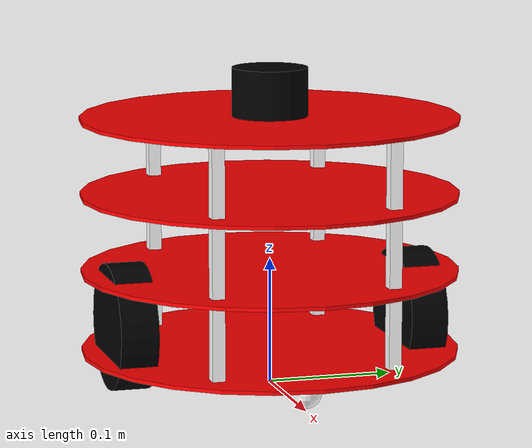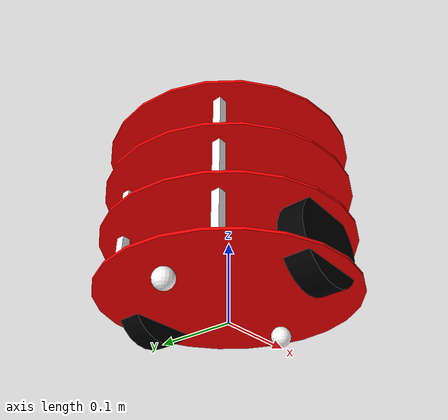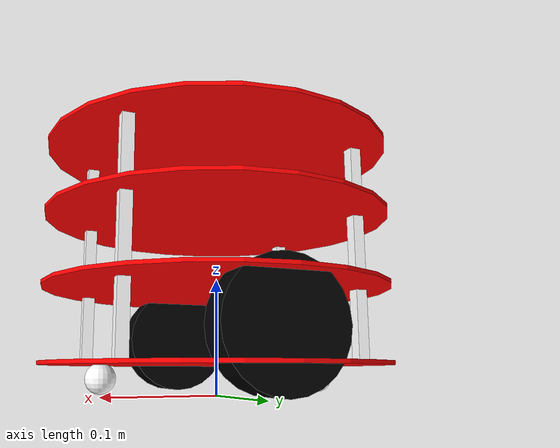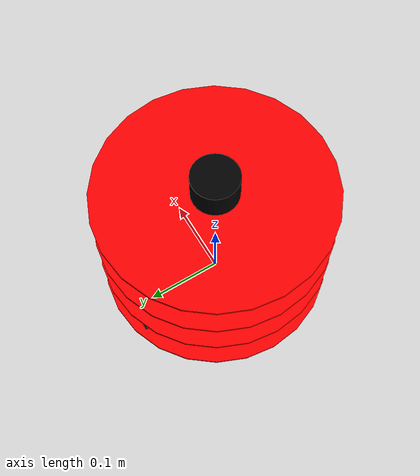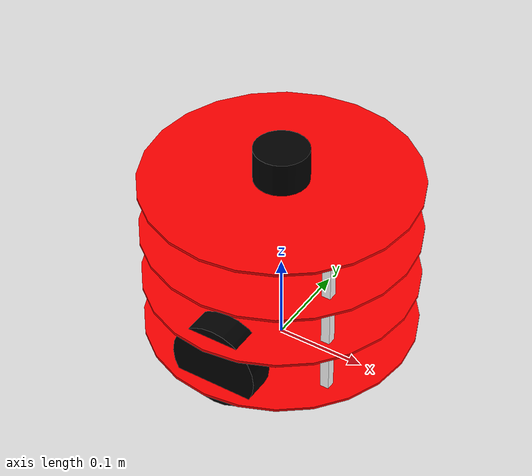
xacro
<?xml version="1.0" encoding="utf-8"?>
<robot  name="ddrobot" xmlns:xacro="http://ros.org/wiki/xacro">
<xacro:include filename="$(find ddrobot_description)/urdf/common_properties.xacro"/>

<!--Base_footprint-->
<link name="base_footprint"> </link>
<joint
    name="base_footprint_to_base"
    type="fixed">
    <origin xyz="0 0 0.0275" rpy="0 0 0" />
    <parent link= "base_footprint"/>
    <child link="base_link"/>
</joint>

<!--Base_link-->
<link name="base_link">

    <xacro:cylinder_inertia m="0.254469" r="0.15" h="0.005"/>

    <visual>
        <origin xyz="0.0 0.0 0.0" rpy="0.0 0.0 0.0"/>
        <geometry>
            <cylinder length="0.003" radius="0.15"/>
        </geometry>
        <material name="blue">
            <color rgba="1.0 0.0 0.0 1.0"/>
            <texture filename=""/>
        </material>
    </visual>
    <collision>
        <origin xyz="0.0 0.0 0.0" rpy="0.0 0.0 0.0"/>
        <geometry>
            <cylinder length="0.003" radius="0.15"/>
        </geometry>
    </collision>
</link>

<!-- Right Wheel -->
  <link name="right_wheel">
    <visual>
      <origin xyz="0 0 0" rpy="1.570795 0 0" />
      <geometry>
          <cylinder length="0.03" radius="0.05" />
      </geometry>
      <material name="black" />
    </visual>
    <!-- Right Wheel collision, mass and inertia -->
    <collision>
      <origin xyz="0 0 0" rpy="1.570795 0 0" />
      <geometry>
          <cylinder length="0.03" radius="0.05" />
      </geometry>
    </collision>

    <xacro:cylinder_inertia m="0.18" r="0.05" h="0.03"/>
  </link>

<joint name="base_to_right_wheel" type="continuous">
    <origin xyz="0 -0.1175 0.025" rpy="0 0 0" />
    <parent link="base_link" />
    <child link="right_wheel" />
    <axis xyz="0 1 0" />
</joint>

<!-- Left Wheel -->
  <link name="left_wheel">
    <visual>
      <origin xyz="0 0 0" rpy="1.570795 0 0" />
      <geometry>
          <cylinder length="0.03" radius="0.05" />
      </geometry>
      <material name="black" />
    </visual>

    <!-- Left Wheel collision, mass and inertia -->
    <collision>
      <origin xyz="0 0 0" rpy="1.570795 0 0" />
      <geometry>
          <cylinder length="0.03" radius="0.05" />
      </geometry>
    </collision>

    <xacro:cylinder_inertia m="0.18" r="0.05" h="0.03"/>

  </link>

<joint
    name="base_to_left_wheel"
    type="continuous">
    <origin xyz="0 0.1175 0.025" rpy="0 0 0" />
    <parent link="base_link" />
    <child link="left_wheel" />
    <axis xyz="0 1 0" />
</joint>

<!--Caster_front_link-->
  <link name="caster_front_wheel">
    <visual>
      <origin xyz="0 0 0" rpy="0 0 0" />
      <geometry>
          <sphere radius="0.0125" />
      </geometry>
      <material name="white" />
    </visual>

    <!--collision, mass and inertia -->
    <collision>
      <origin xyz="0 0 0" rpy="0 0 0" />
      <geometry>
          <sphere radius="0.0125" />
      </geometry>
    </collision>

    <xacro:sphere_inertia m="0.05" r="0.0125"/>

  </link>

  <joint
    name="base_to_caster_front"
    type="fixed">
    <origin xyz="0.1 0.0 -0.0125" rpy="0.0 0.0 0.0" />
    <parent link="base_link" />
    <child link="caster_front_wheel" />
  </joint>

<!--Caster_back_link-->
  <link name="caster_back_wheel">
    <visual>
      <origin xyz="0 0 0" rpy="0 0 0" />
      <geometry>
          <sphere radius="0.0125" />
      </geometry>
      <material name="white" />
    </visual>

    <!--collision, mass and inertia -->
    <collision>
      <origin xyz="0 0 0" rpy="0 0 0" />
      <geometry>
        <sphere radius="0.0125" />
      </geometry>
    </collision>

    <xacro:sphere_inertia m="0.05" r="0.0125"/>

  </link>

  <joint
    name="base_to_caster_back"
    type="fixed">
    <origin xyz="-0.1 0.0 -0.0125" rpy="0.0 0.0 0.0" />
    <parent link="base_link" />
    <child link="caster_back_wheel" />
  </joint>

<!--pillar_11-->
  <link name="pillar_11">
    <visual>
      <origin xyz="0 0 0" rpy="0 0 0" />
      <geometry>
          <box size="0.01 0.01 0.06" />
      </geometry>
      <material name="white" />
    </visual>

    <!--collision, mass and inertia -->
    <collision>
      <origin xyz="0 0 0" rpy="0 0 0" />
      <geometry>
          <box size="0.01 0.01 0.06" />
      </geometry>
    </collision>

    <xacro:box_inertia m="0.08" w="0.01" h="0.06" d="0.01"/>

  </link>

  <joint
    name="base_to_pillar_11"
    type="fixed">
    <origin xyz="0.1 0.07 0.03" rpy="0.0 0.0 0.0" />
    <parent link="base_link" />
    <child link="pillar_11" />
  </joint>

  <!--pillar_12-->
  <link name="pillar_12">
    <visual>
      <origin xyz="0 0 0" rpy="0 0 0" />
      <geometry>
          <box size="0.01 0.01 0.06" />
      </geometry>
      <material name="white" />
    </visual>

    <!--collision, mass and inertia -->
    <collision>
      <origin xyz="0 0 0" rpy="0 0 0" />
      <geometry>
          <box size="0.01 0.01 0.06" />
      </geometry>
    </collision>

    <xacro:box_inertia m="0.08" w="0.01" h="0.06" d="0.01"/>

  </link>

  <joint
    name="base_to_pillar_12"
    type="fixed">
    <origin xyz="0.1 -0.07 0.03" rpy="0.0 0.0 0.0" />
    <parent link="base_link" />
    <child link="pillar_12" />
  </joint>

  <!--pillar_13-->
  <link name="pillar_13">
    <visual>
      <origin xyz="0 0 0" rpy="0 0 0" />
      <geometry>
          <box size="0.01 0.01 0.06" />
      </geometry>
      <material name="white" />
    </visual>

    <!--collision, mass and inertia -->
    <collision>
      <origin xyz="0 0 0" rpy="0 0 0" />
      <geometry>
          <box size="0.01 0.01 0.06" />
      </geometry>
    </collision>

    <xacro:box_inertia m="0.08" w="0.01" h="0.06" d="0.01"/>

  </link>

  <joint
    name="base_to_pillar_13"
    type="fixed">
    <origin xyz="-0.1 -0.07 0.03" rpy="0.0 0.0 0.0" />
    <parent link="base_link" />
    <child link="pillar_13" />
  </joint>

  <!--pillar_14-->
  <link name="pillar_14">
    <visual>
      <origin xyz="0 0 0" rpy="0 0 0" />
      <geometry>
          <box size="0.01 0.01 0.06" />
      </geometry>
      <material name="white" />
    </visual>

    <!--collision, mass and inertia -->
    <collision>
      <origin xyz="0 0 0" rpy="0 0 0" />
      <geometry>
          <box size="0.01 0.01 0.06" />
      </geometry>
    </collision>

    <xacro:box_inertia m="0.08" w="0.01" h="0.06" d="0.01"/>

  </link>

  <joint
    name="base_to_pillar_14"
    type="fixed">
    <origin xyz="-0.1 0.07 0.03" rpy="0.0 0.0 0.0" />
    <parent link="base_link" />
    <child link="pillar_14" />
  </joint>

  <!--floor_link_2-->
<link name="floor_link_2">

    <xacro:cylinder_inertia m="0.254469" r="0.15" h="0.003"/>

    <visual>
        <origin xyz="0.0 0.0 0.0" rpy="0.0 0.0 0.0"/>
        <geometry>
            <cylinder length="0.003" radius="0.15"/>
        </geometry>
        <material name="blue">
            <color rgba="1.0 0.0 0.0 1.0"/>
            <texture filename=""/>
        </material>
    </visual>
    <collision>
        <origin xyz="0.0 0.0 0.0" rpy="0.0 0.0 0.0"/>
        <geometry>
            <cylinder length="0.003" radius="0.15"/>
        </geometry>
    </collision>
</link>

<joint
    name="base_to_floor2"
    type="fixed">
    <origin xyz="0 0 0.0635" rpy="0 0 0" />
    <parent link= "base_link"/>
    <child link="floor_link_2"/>
</joint>

<!--pillar_11-->
  <link name="pillar_21">
    <visual>
      <origin xyz="0 0 0" rpy="0 0 0" />
      <geometry>
          <box size="0.01 0.01 0.06" />
      </geometry>
      <material name="white" />
    </visual>

    <!--collision, mass and inertia -->
    <collision>
      <origin xyz="0 0 0" rpy="0 0 0" />
      <geometry>
          <box size="0.01 0.01 0.06" />
      </geometry>
    </collision>

    <xacro:box_inertia m="0.08" w="0.01" h="0.06" d="0.01"/>

  </link>

  <joint
    name="floor2_to_pillar_21"
    type="fixed">
    <origin xyz="0.1 0.07 0.03" rpy="0.0 0.0 0.0" />
    <parent link="floor_link_2" />
    <child link="pillar_21" />
  </joint>

  <!--pillar_12-->
  <link name="pillar_22">
    <visual>
      <origin xyz="0 0 0" rpy="0 0 0" />
      <geometry>
          <box size="0.01 0.01 0.06" />
      </geometry>
      <material name="white" />
    </visual>

    <!--collision, mass and inertia -->
    <collision>
      <origin xyz="0 0 0" rpy="0 0 0" />
      <geometry>
          <box size="0.01 0.01 0.06" />
      </geometry>
    </collision>

    <xacro:box_inertia m="0.08" w="0.01" h="0.06" d="0.01"/>

  </link>

  <joint
    name="floor2_to_pillar_22"
    type="fixed">
    <origin xyz="0.1 -0.07 0.03" rpy="0.0 0.0 0.0" />
    <parent link="floor_link_2" />
    <child link="pillar_22" />
  </joint>

  <!--pillar_13-->
  <link name="pillar_23">
    <visual>
      <origin xyz="0 0 0" rpy="0 0 0" />
      <geometry>
          <box size="0.01 0.01 0.06" />
      </geometry>
      <material name="white" />
    </visual>

    <!--collision, mass and inertia -->
    <collision>
      <origin xyz="0 0 0" rpy="0 0 0" />
      <geometry>
          <box size="0.01 0.01 0.06" />
      </geometry>
    </collision>

    <xacro:box_inertia m="0.08" w="0.01" h="0.06" d="0.01"/>

  </link>

  <joint
    name="base_to_pillar_23"
    type="fixed">
    <origin xyz="-0.1 -0.07 0.03" rpy="0.0 0.0 0.0" />
    <parent link="floor_link_2" />
    <child link="pillar_23" />
  </joint>

  <!--pillar_14-->
  <link name="pillar_24">
    <visual>
      <origin xyz="0 0 0" rpy="0 0 0" />
      <geometry>
          <box size="0.01 0.01 0.06" />
      </geometry>
      <material name="white" />
    </visual>

    <!--collision, mass and inertia -->
    <collision>
      <origin xyz="0 0 0" rpy="0 0 0" />
      <geometry>
          <box size="0.01 0.01 0.06" />
      </geometry>
    </collision>

    <xacro:box_inertia m="0.08" w="0.01" h="0.06" d="0.01"/>

  </link>

  <joint
    name="base_to_pillar_24"
    type="fixed">
    <origin xyz="-0.1 0.07 0.03" rpy="0.0 0.0 0.0" />
    <parent link="floor_link_2" />
    <child link="pillar_24" />
  </joint>

  <!--IMU_link-->
  <link name="imu_link"/>

  <joint name="imu_joint" type="fixed">
    <child link="imu_link"/>
    <parent link="base_link"/>
    <origin xyz="0 0 0.07" rpy="0 0 0"/>
  </joint>

    <!--floor_link_3-->
<link name="floor_link_3">

    <xacro:cylinder_inertia m="0.254469" r="0.15" h="0.003"/>

    <visual>
        <origin xyz="0.0 0.0 0.0" rpy="0.0 0.0 0.0"/>
        <geometry>
            <cylinder length="0.003" radius="0.15"/>
        </geometry>
        <material name="blue">
            <color rgba="1.0 0.0 0.0 1.0"/>
            <texture filename=""/>
        </material>
    </visual>
    <collision>
        <origin xyz="0.0 0.0 0.0" rpy="0.0 0.0 0.0"/>
        <geometry>
            <cylinder length="0.003" radius="0.15"/>
        </geometry>
    </collision>
</link>

<joint
    name="base_to_floor3"
    type="fixed">
    <origin xyz="0 0 0.125" rpy="0 0 0" />
    <parent link= "base_link"/>
    <child link="floor_link_3"/>
</joint>

<!--pillar_11-->
  <link name="pillar_31">
    <visual>
      <origin xyz="0 0 0" rpy="0 0 0" />
      <geometry>
          <box size="0.01 0.01 0.06" />
      </geometry>
      <material name="white" />
    </visual>

    <!--collision, mass and inertia -->
    <collision>
      <origin xyz="0 0 0" rpy="0 0 0" />
      <geometry>
          <box size="0.01 0.01 0.06" />
      </geometry>
    </collision>

    <xacro:box_inertia m="0.08" w="0.01" h="0.06" d="0.01"/>

  </link>

  <joint
    name="floor3_to_pillar_31"
    type="fixed">
    <origin xyz="0.1 0.07 0.03" rpy="0.0 0.0 0.0" />
    <parent link="floor_link_3" />
    <child link="pillar_31" />
  </joint>

  <!--pillar_12-->
  <link name="pillar_32">
    <visual>
      <origin xyz="0 0 0" rpy="0 0 0" />
      <geometry>
          <box size="0.01 0.01 0.06" />
      </geometry>
      <material name="white" />
    </visual>

    <!--collision, mass and inertia -->
    <collision>
      <origin xyz="0 0 0" rpy="0 0 0" />
      <geometry>
          <box size="0.01 0.01 0.06" />
      </geometry>
    </collision>

    <xacro:box_inertia m="0.08" w="0.01" h="0.06" d="0.01"/>

  </link>

  <joint
    name="floor3_to_pillar_32"
    type="fixed">
    <origin xyz="0.1 -0.07 0.03" rpy="0.0 0.0 0.0" />
    <parent link="floor_link_3" />
    <child link="pillar_32" />
  </joint>

  <!--pillar_13-->
  <link name="pillar_33">
    <visual>
      <origin xyz="0 0 0" rpy="0 0 0" />
      <geometry>
          <box size="0.01 0.01 0.06" />
      </geometry>
      <material name="white" />
    </visual>

    <!--collision, mass and inertia -->
    <collision>
      <origin xyz="0 0 0" rpy="0 0 0" />
      <geometry>
          <box size="0.01 0.01 0.06" />
      </geometry>
    </collision>

    <xacro:box_inertia m="0.08" w="0.01" h="0.06" d="0.01"/>

  </link>

  <joint
    name="base_to_pillar_33"
    type="fixed">
    <origin xyz="-0.1 -0.07 0.03" rpy="0.0 0.0 0.0" />
    <parent link="floor_link_3" />
    <child link="pillar_33" />
  </joint>

  <!--pillar_14-->
  <link name="pillar_34">
    <visual>
      <origin xyz="0 0 0" rpy="0 0 0" />
      <geometry>
          <box size="0.01 0.01 0.06" />
      </geometry>
      <material name="white" />
    </visual>

    <!--collision, mass and inertia -->
    <collision>
      <origin xyz="0 0 0" rpy="0 0 0" />
      <geometry>
          <box size="0.01 0.01 0.06" />
      </geometry>
    </collision>

    <xacro:box_inertia m="0.08" w="0.01" h="0.06" d="0.01"/>

  </link>

  <joint
    name="base_to_pillar_34"
    type="fixed">
    <origin xyz="-0.1 0.07 0.03" rpy="0.0 0.0 0.0" />
    <parent link="floor_link_3" />
    <child link="pillar_34" />
  </joint>

    <!--floor_link_4-->
<link name="floor_link_4">

    <xacro:cylinder_inertia m="0.254469" r="0.15" h="0.003"/>

    <visual>
        <origin xyz="0.0 0.0 0.0" rpy="0.0 0.0 0.0"/>
        <geometry>
            <cylinder length="0.003" radius="0.15"/>
        </geometry>
        <material name="blue">
            <color rgba="1.0 0.0 0.0 1.0"/>
            <texture filename=""/>
        </material>
    </visual>
    <collision>
        <origin xyz="0.0 0.0 0.0" rpy="0.0 0.0 0.0"/>
        <geometry>
            <cylinder length="0.003" radius="0.15"/>
        </geometry>
    </collision>
</link>

<joint
    name="base_to_floor4"
    type="fixed">
    <origin xyz="0 0 0.185" rpy="0 0 0" />
    <parent link= "base_link"/>
    <child link="floor_link_4"/>
</joint>

<!--RPLIDAR-->
<link name="laser">
  <xacro:cylinder_inertia m="0.19" r="0.03" h="0.04"/>

  <visual>
    <origin xyz=" 0 0 0 " rpy="0 0 0" />
    <geometry>
      <cylinder length="0.04" radius="0.03"/>
    </geometry>
    <material name="black"/>
  </visual>

  <collision>
    <origin xyz="0.0 0.0 0.0" rpy="0 0 0" />
    <geometry>
      <cylinder length="0.04" radius="0.03"/>
    </geometry>
  </collision>
</link>

<joint
    name="base_to_laser"
    type="fixed">
    <origin xyz="0 0 0.205" rpy="0 0 0" />
    <parent link= "base_link"/>
    <child link="laser"/>
</joint>

</robot>

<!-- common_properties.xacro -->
<robot name="xacro_properties" xmlns:xacro="http://ros.org/wiki/xacro">

  <!-- Init colour -->
  <material name="black"> <color rgba="0.0 0.0 0.0 1.0"/> </material>
  <material name="dark"> <color rgba="0.3 0.3 0.3 1.0"/> </material>
  <material name="light_black"> <color rgba="0.4 0.4 0.4 1.0"/> </material>
  <material name="blue"> <color rgba="0.0 0.0 0.8 1.0"/> </material>
  <material name="green"> <color rgba="0.0 0.8 0.0 1.0"/> </material>
  <material name="grey"> <color rgba="0.5 0.5 0.5 1.0"/> </material>
  <material name="orange"> <color rgba="${255/255} ${108/255} ${10/255} 1.0"/> </material>
  <material name="light_orange"> <color rgba="${255/255} ${108/255} ${10/255} 0.8"/> </material>
  <material name="brown"> <color rgba="${222/255} ${207/255} ${195/255} 1.0"/> </material>
  <material name="red"> <color rgba="0.8 0.0 0.0 1.0"/> </material>
  <material name="white"> <color rgba="1.0 1.0 1.0 1.0"/> </material>

  <!--Interial macros-->
  <xacro:macro name="cylinder_inertia" params="m r h">
    <inertial>
      <origin xyz="0 0 0" rpy="0 0 0" />
      <mass value="${m}"/>
      <inertia ixx="${m*(3*r*r+h*h)/12}" ixy="0" ixz="0" iyy="${m*(3*r*r+h*h)/12}" iyz="0" izz="${m*r*r/2}"/>
    </inertial>
  </xacro:macro>

  <xacro:macro name="box_inertia" params="m w h d">
    <inertial>
      <origin xyz="0 0 0" rpy="0 0 0" />
      <mass value="${m}"/>
      <inertia ixx="${m / 12.0 * (d*d + h*h)}" ixy="0.0" ixz="0.0" iyy="${m / 12.0 * (w*w + d*d)}" iyz="0.0" izz="${m / 12.0 * (w*w + h*h)}"/>
    </inertial>
  </xacro:macro>

   <xacro:macro name="sphere_inertia" params="m r">
    <inertial>
      <origin xyz="0 0 0" rpy="0 0 0" />
      <mass value="${m}"/>
      <inertia ixx="${m * 0.4 * r * r}" ixy="0.0" ixz="0.0" iyy="${m * 0.4 * r * r}" iyz="0.0" izz="${m * 0.4 * r * r}"/>
    </inertial>
  </xacro:macro>

</robot>
